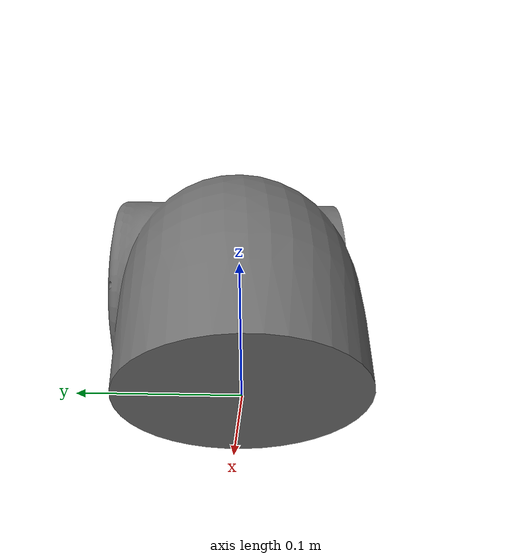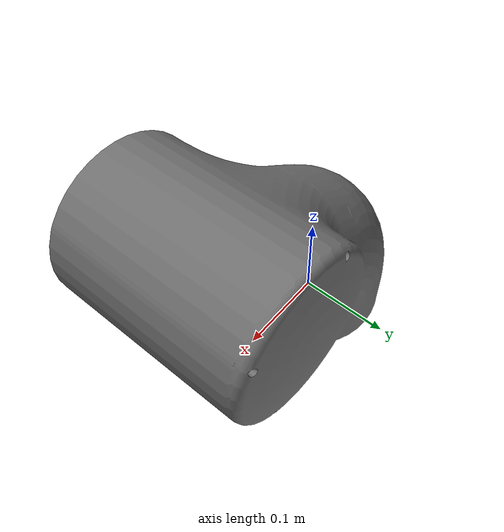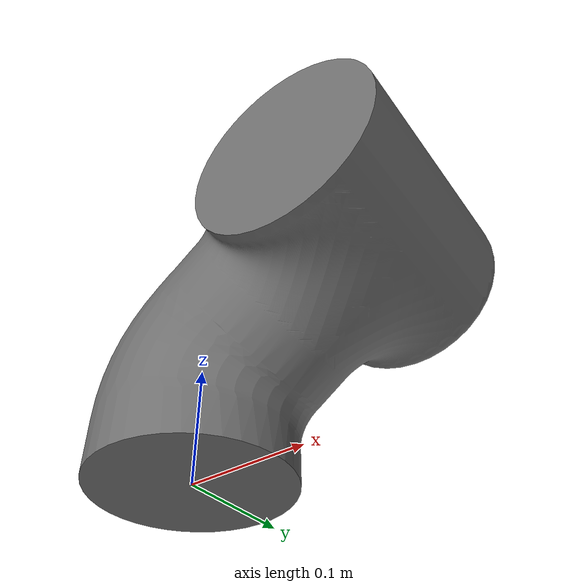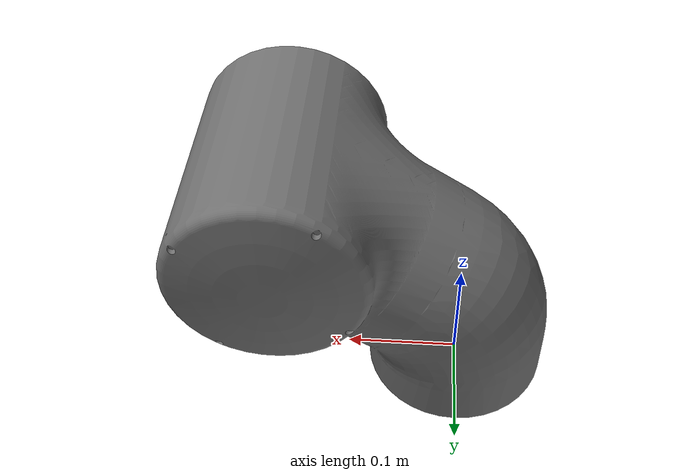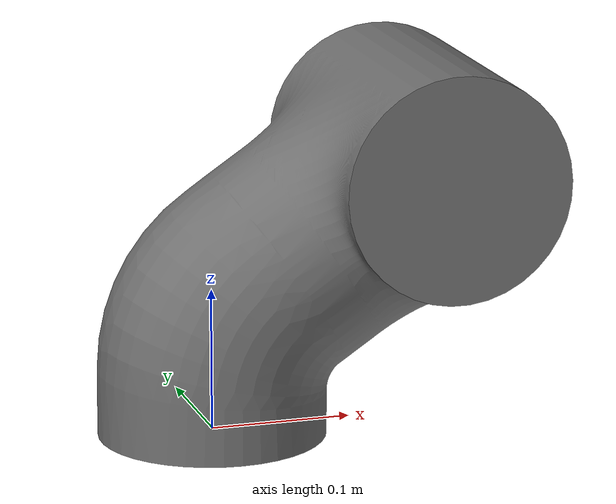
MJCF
<mujoco model="link_1">
  <default>
    <default class="visual">
      <geom group="2" type="mesh" contype="0" conaffinity="0"/>
    </default>
    <default class="collision">
      <geom group="3" type="mesh"/>
    </default>
  </default>
  <asset>
    <material name="material_link_1_0" specular="0.20000000000000004" shininess="1.0" rgba="0.43921569 0.43921569 0.43921569 1.0"/>
    <mesh file="link_1.obj"/>
  </asset>
  <worldbody>
    <body name="link_1">
      <geom material="material_link_1_0" mesh="link_1" class="visual"/>
      <geom mesh="link_1" class="collision"/>
    </body>
  </worldbody>
</mujoco>
